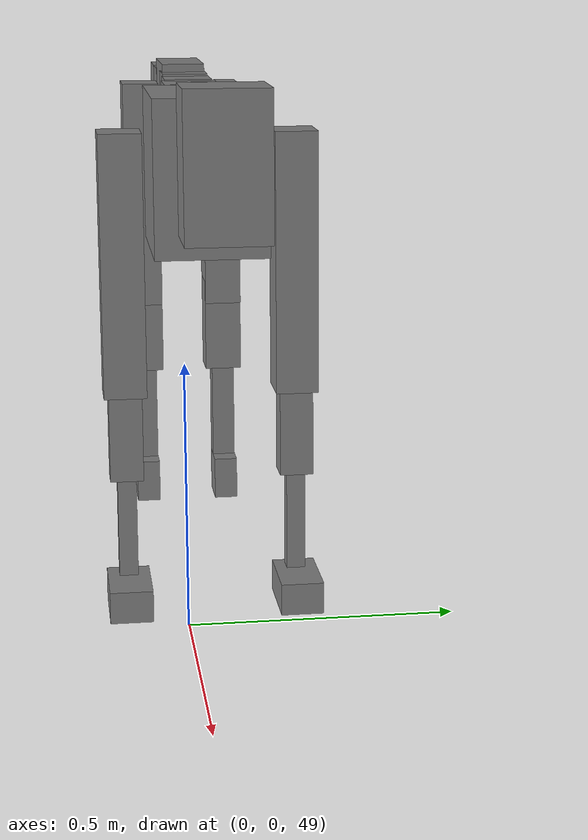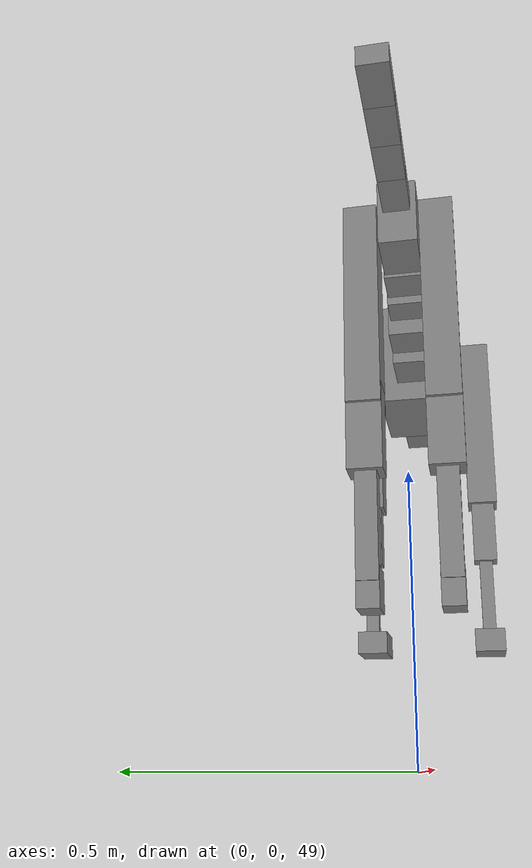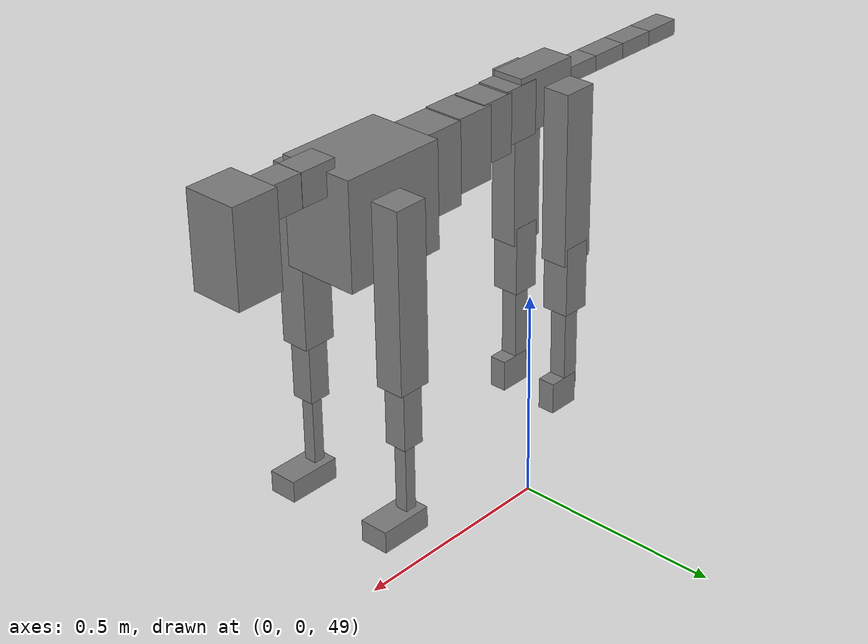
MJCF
<mujoco model="dog">

    <default>
        <joint armature="0.02" stiffness="1" damping="0.2" limited="true"/>
        <geom condim="3" friction="1 0.05 0.05" margin="0.01"/>
        <motor ctrllimited="true" ctrlrange="-1.0 1.0" forcelimited="true" gear="50"/>
    </default>

    <compiler inertiafromgeom="true" angle="radian"/>

    <option timestep="0.016" iterations="50" tolerance="1e-10" solver="Newton" jacobian="dense" cone="pyramidal"/>

    <size nconmax="20000" njmax="60000" nstack="5000000"/>
    <visual>
        <map force="0.1" zfar="30"/>
        <rgba haze="0.15 0.25 0.35 1"/>
        <quality shadowsize="2048"/>
        <global offwidth="800" offheight="800"/>
    </visual>

    <asset>
        <texture type="skybox" builtin="gradient" rgb1="0.3 0.5 0.7" rgb2="0 0 0" width="512" height="512"/>
        <texture name="texplane" type="2d" builtin="checker" rgb1=".2 .3 .4" rgb2=".1 0.15 0.2" width="512" height="512"
                 mark="cross" markrgb=".8 .8 .8"/>
        <texture name="texgeom" type="cube" builtin="flat" mark="cross" width="127" height="1278" rgb1="0.8 0.6 0.4"
                 rgb2="0.8 0.6 0.4" markrgb="1 1 1" random="0.01"/>

        <material name="matplane" reflectance="0.3" texture="texplane" texrepeat="1 1" texuniform="true"/>
        <material name="matgeom" texture="texgeom" texuniform="true" rgba="0.8 0.6 .4 1"/>
    </asset>

    <worldbody>
        <geom name="floor" pos="0 0 0" size="0 0 .25" type="plane" material="matplane" condim="3"/>

        <light directional="false" diffuse=".2 .2 .2" specular="0 0 0" pos="0 0 5" dir="0 0 -1" castshadow="false"/>
        <light mode="targetbodycom" target="torso" directional="false" diffuse=".8 .8 .8" specular="0.3 0.3 0.3"
               pos="0 0 4.0" dir="0 0 -1"/>

        <body name="root" pos="0 0 50">
            <freejoint name="root_1"/>
            <geom type="box" pos="0 0 -0.02" size="0.0774  0.0358  0.063" density="2030"/>

            <body name="spine1" pos="0.054 0 0">
                <joint name="spine1_y" axis="0 1 0" range="0 0.7" limited="true"/>
                <geom type="box" pos="0.02375 0 -0.03" size="0.04375  0.0375  0.05985" density="2030"/>

                <body name="spine2" pos="0.0612 0 0">
                    <joint name="spine2_y" axis="0 1 0" range="-0.15 0.15" limited="true"/>
                    <geom type="box" pos="0.03555  0  -0.04" size="0.04055  0.039  0.06615" density="2030"/>

                    <body name="spine3" pos="0.0730 0 0">
                        <joint name="spine3_y" axis="0 1 0" range="-0.15 0.15" limited="true"/>
                        <geom type="box" pos="0.03555  0  -0.057" size="0.04555  0.0445  0.081" density="2030"/>

                        <body name="spine4" pos="0.0780 0 0">
                            <joint name="spine4_y" axis="0 1 0" range="-0.15 0.15" limited="true"/>
                            <geom type="box" pos="0.05265  0  -0.07" size="0.05265  0.045  0.09135" density="2030"/>

                            <body name="torso" pos="0.1082 0 0">
                                <joint name="torso_y" axis="0 1 0" range="-0.15 0.15" limited="true"/>
                                <geom type="box" pos="0.11925  0  -0.085" size="0.11925  0.085  0.11745"
                                      density="2030"/>

                                <body name="neck1" pos="0.2160  0   0.0180">
                                    <joint name="neck1_y" axis="0 1 0" range="-1.2  -1" limited="true"/>
                                    <geom type="box" pos="0.0423  0  0" size="0.0423  0.03  0.036" density="2325"/>

                                    <body name="neck2" pos="0.0853  0  0">
                                        <joint name="neck2_y" axis="0 1 0" range="0.1  0" limited="true"/>
                                        <geom type="box" pos="0.0423  0  0" size="0.0423  0.03  0.036" density="2325"/>

                                        <body name="head" pos="0.0853  0  0">
                                            <joint name="head_y" axis="0 1 0" range="-0.3  -0.2" limited="true"/>
                                            <geom type="box" pos="0.0531  0  -0.055" size="0.0531  0.06  0.1044"
                                                  density="4030"/>

                                        </body>
                                    </body>
                                </body>

                                <body name="front_shoulder" pos="0.156  0   -0.0480">
                                    <joint name="front_shoulder_y" axis="0 1 0" range="-1 1.5" limited="true"/>
                                    <geom type="box" pos="0 0.13 -0.1720" size="0.0378  0.0323  0.1986" density="1158"/>
                                    <geom type="box" pos="0 -0.13 -0.1720" size="0.0378  0.0323  0.1986"
                                          density="1158"/>

                                    <body name="front_elbow" pos="0  0  -0.3439">
                                        <joint name="front_elbow_y" axis="0 1 0" range="-2 0" limited="true"/>
                                        <geom type="box" pos="0 0.13 -0.0796" size="0.0248  0.0253  0.0796"
                                              density="1081"/>
                                        <geom type="box" pos="0 -0.13 -0.0796" size="0.0248  0.0253  0.0796"
                                              density="1081"/>

                                        <body name="front_wrist" pos="0  0  -0.1592">
                                            <joint name="front_wrist_y" axis="0 1 0" range="-0.2 0" limited="true"/>
                                            <geom type="box" pos="0 0.13 -0.0844" size="0.0130  0.0144  0.0976"
                                                  density="1664"/>
                                            <geom type="box" pos="0 -0.13 -0.0844" size="0.0130  0.0144  0.0976"
                                                  density="1664"/>

                                            <body name="front_finger_end" pos="0  0  -0.1689">
                                                <joint name="front_finger_y" axis="0 1 0" range="-0.4 1"
                                                       limited="true"/>
                                                <geom type="box" pos="0.0326  0.13  -0.0093"
                                                      size="0.0597  0.0326  0.0243" density="1515"/>
                                                <geom type="box" pos="0.0326  -0.13  -0.0093"
                                                      size="0.0597  0.0326  0.0243" density="1515"/>

                                            </body>

                                        </body>
                                    </body>
                                </body>

                            </body>
                        </body>
                    </body>
                </body>
            </body>

            <body name="back_hip" pos="-0.03 0 -0.018">
                <joint name="back_hip_y" axis="0 1 0" range="-1.5 0.3" limited="true"/>
                <geom type="box" pos="0 0.07 -0.1730" size="0.0398  0.0312  0.1958" density="1154"/>
                <geom type="box" pos="0 -0.07 -0.1730" size="0.0398  0.0312  0.1958" density="1154"/>

                <body name="back_knee" pos="0  0  -0.3460">
                    <joint name="back_knee_y" axis="0 1 0" range="0 2.8" limited="true"/>
                    <geom type="box" pos="0 0.07 -0.0644" size="0.0320  0.0315  0.0799" density="1227"/>
                    <geom type="box" pos="0 -0.07 -0.0644" size="0.0320  0.0315  0.0799" density="1227"/>

                    <body name="back_ankle" pos="0  0  -0.1287">
                        <joint name="back_ankle_y" axis="0 1 0" range="-2.2 0" limited="true"/>
                        <geom type="box" pos="0 0.07 -0.0974" size="0.0195  0.0195  0.1087" density="1284"/>
                        <geom type="box" pos="0 -0.07 -0.0974" size="0.0195  0.0195  0.1087" density="1284"/>

                        <body name="back_toe_end" pos="0  0  -0.1949">
                            <joint name="back_toe_y" axis="0 1 0" range="-0.4 1" limited="true"/>
                            <geom type="box" pos="0.0199  0.07  -0.0212" size="0.0365  0.0199  0.0362" density="1515"/>
                            <geom type="box" pos="0.0199  -0.07  -0.0212" size="0.0365  0.0199  0.0362" density="1515"/>

                        </body>
                    </body>
                </body>
            </body>

            <body name="tail1" pos="-0.074 0 -0.006">
                <joint name="tail1_y" axis="0 1 0" range="-0.2 0.2" limited="true"/>
                <geom type="box" pos="-0.0536  0  0" size="0.045  0.025  0.0175" density="1587"/>

                <body name="tail2" pos="-0.09 0 0">
                    <joint name="tail2_y" axis="0 1 0" range="-0.2 0.2" limited="true"/>
                    <geom type="box" pos="-0.0536  0  0" size="0.045  0.025  0.0175" density="1587"/>

                    <body name="tail3" pos="-0.09 0 0">
                        <joint name="tail3_y" axis="0 1 0" range="-0.2 0.2" limited="true"/>
                        <geom type="box" pos="-0.0536  0  0" size="0.045  0.025  0.0175" density="1587"/>

                        <body name="tail4" pos="-0.09 0 0">
                            <joint name="tail4_y" axis="0 1 0" range="-0.2 0.2" limited="true"/>
                            <geom type="box" pos="-0.0536  0  0" size="0.045  0.025  0.0175" density="1587"/>

                        </body>
                    </body>
                </body>
            </body>
        </body>
    </worldbody>

    <actuator>
        <motor joint="spine1_y" forcerange="-150 150     "/>
        <motor joint="spine2_y" forcerange="-150 150     "/>
        <motor joint="spine3_y" forcerange="-150 150     "/>
        <motor joint="spine4_y" forcerange="-150 150     "/>
        <motor joint="torso_y" forcerange="-150 150     "/>
        <motor joint="neck1_y" forcerange="-100 100       "/>
        <motor joint="neck2_y" forcerange="-100 100       "/>
        <motor joint="head_y" forcerange="-150 150       "/>
        <motor joint="front_shoulder_y" forcerange="-175.16 140.41"/>
        <motor joint="front_elbow_y" forcerange="-180.21 103.89"/>
        <motor joint="front_wrist_y" forcerange="-51.75 63.70"/>
        <motor joint="front_finger_y" forcerange="-74.35 59.32"/>
        <motor joint="back_hip_y" forcerange="-300.99 315.30"/>
        <motor joint="back_knee_y" forcerange="-276.87 381.64"/>
        <motor joint="back_angle_y" forcerange="-129.34 82.72"/>
        <motor joint="back_toe_y" forcerange="-41.10 38.09"/>
        <motor joint="tail1_y" forcerange="-50 50     "/>
        <motor joint="tail2_y" forcerange="-50 50     "/>
        <motor joint="tail3_y" forcerange="-50 50     "/>
        <motor joint="tail4_y" forcerange="-50 50     "/>
    </actuator>
</mujoco>
